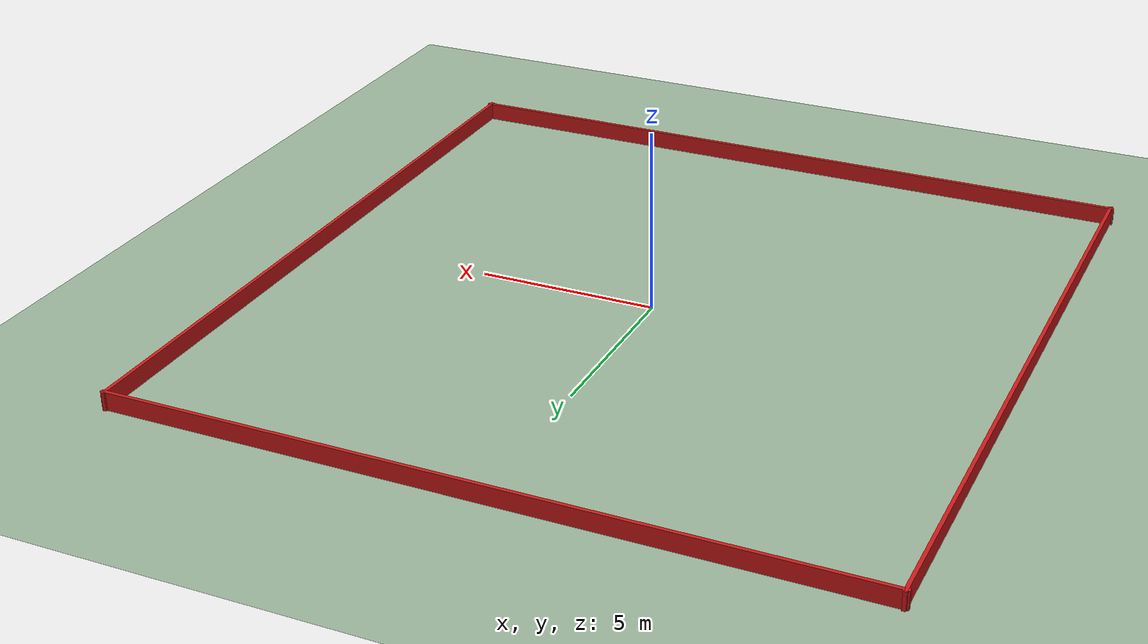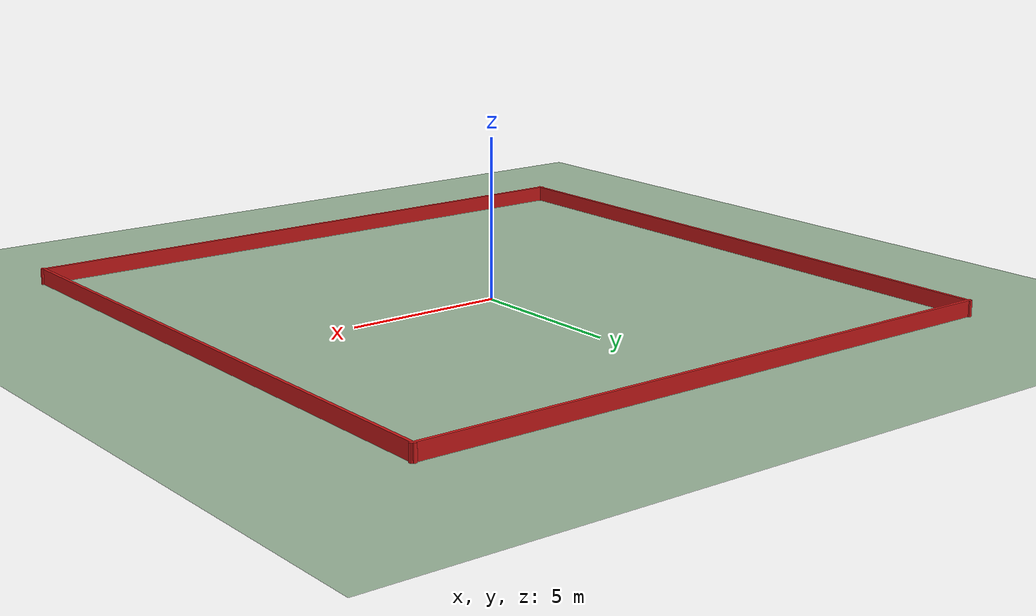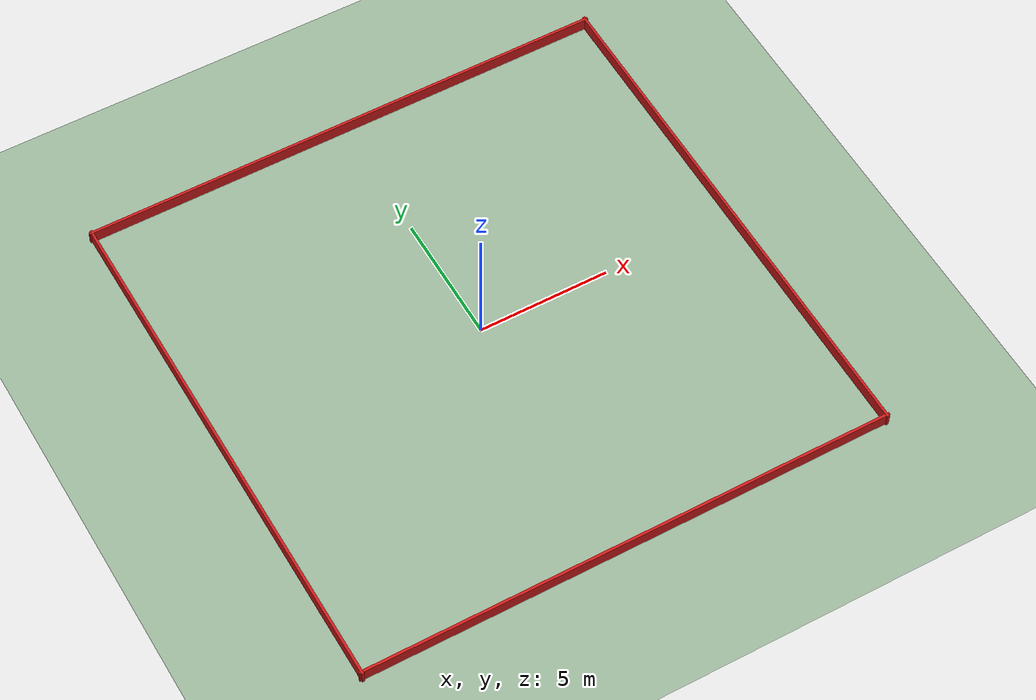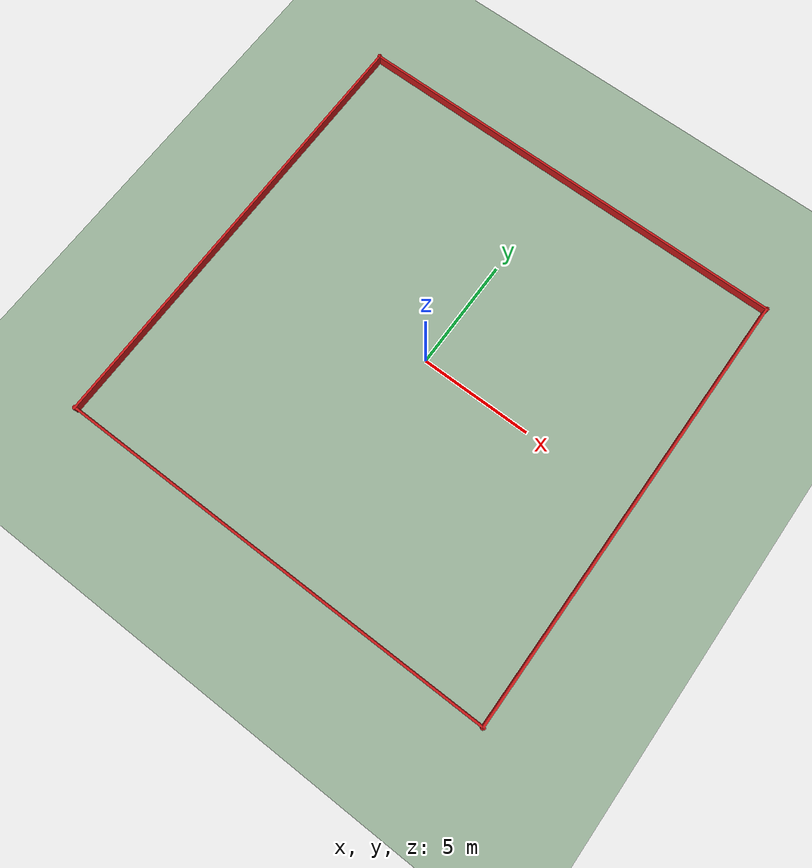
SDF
<?xml version="1.0" ?>
<sdf version="1.9">
  <world name="mapping_world_px4">
    <physics name="1ms" type="ignored">
      <max_step_size>0.004</max_step_size>
      <real_time_factor>1.0</real_time_factor>
      <real_time_update_rate>250</real_time_update_rate>
    </physics>
    <gravity>0 0 -9.8</gravity>
    <magnetic_field>6e-06 2.3e-05 -4.2e-05</magnetic_field>
    <atmosphere type="adiabatic"/>
    <spherical_coordinates>
      <surface_model>EARTH_WGS84</surface_model>
      <world_frame_orientation>ENU</world_frame_orientation>
      <latitude_deg>47.397971057728974</latitude_deg>
      <longitude_deg>8.546163739800146</longitude_deg>
      <elevation>488.0</elevation>
    </spherical_coordinates>

    <plugin filename="gz-sim-physics-system" name="gz::sim::systems::Physics"/>
    <plugin filename="gz-sim-user-commands-system" name="gz::sim::systems::UserCommands"/>
    <plugin filename="gz-sim-scene-broadcaster-system" name="gz::sim::systems::SceneBroadcaster"/>
    <plugin filename="gz-sim-imu-system" name="gz::sim::systems::Imu"/>
    <plugin filename="gz-sim-navsat-system" name="gz::sim::systems::NavSat"/>
    <plugin filename="gz-sim-magnetometer-system" name="gz::sim::systems::Magnetometer"/>
    <plugin filename="gz-sim-air-pressure-system" name="gz::sim::systems::AirPressure"/>
    <plugin filename="gz-sim-air-speed-system" name="gz::sim::systems::AirSpeed"/>
    <plugin filename="gz-sim-sensors-system" name="gz::sim::systems::Sensors">
      <render_engine>ogre2</render_engine>
    </plugin>
    <plugin filename="gz-sim-wind-effects-system" name="gz::sim::systems::WindEffects">
      <horizontal>
        <magnitude>
          <time_for_rise>10</time_for_rise>
          <sin>
            <amplitude_percent>GUST_AMPLITUDE</amplitude_percent>
            <period>60</period>
          </sin>
        </magnitude>
        <direction>
          <time_for_rise>30</time_for_rise>
        </direction>
      </horizontal>
    </plugin>

    <wind>
      <linear_velocity>WIND_VX WIND_VY 0</linear_velocity>
    </wind>

    <light type="directional" name="sun">
      <cast_shadows>true</cast_shadows>
      <pose>0 0 500 0 0 0</pose>
      <diffuse>0.9 0.9 0.9 1</diffuse>
      <specular>0.27 0.27 0.27 1</specular>
      <attenuation>
        <range>2000</range>
        <constant>0.9</constant>
        <linear>0.01</linear>
        <quadratic>0.001</quadratic>
      </attenuation>
      <direction>0.001 0.625 -0.78</direction>
    </light>

    <model name="ground_plane">
      <static>true</static>
      <link name="link">
        <collision name="collision">
          <geometry>
            <plane>
              <normal>0 0 1</normal>
              <size>40 40</size>
            </plane>
          </geometry>
        </collision>
        <visual name="visual">
          <geometry>
            <plane>
              <normal>0 0 1</normal>
              <size>40 40</size>
            </plane>
          </geometry>
          <material>
            <ambient>0.6 0.7 0.6 1</ambient>
            <diffuse>0.6 0.7 0.6 1</diffuse>
            <specular>0.2 0.2 0.2 1</specular>
          </material>
        </visual>
        <enable_wind>ENABLE_WIND</enable_wind>
      </link>
    </model>

    <model name="boundary_north">
      <static>true</static>
      <pose>0 10 0.25 0 0 0</pose>
      <link name="link">
        <visual name="visual">
          <geometry><box><size>20.2 0.1 0.5</size></box></geometry>
          <material><ambient>0.8 0.1 0.1 1</ambient><diffuse>0.8 0.1 0.1 1</diffuse></material>
        </visual>
      </link>
    </model>
    <model name="boundary_south">
      <static>true</static>
      <pose>0 -10 0.25 0 0 0</pose>
      <link name="link">
        <visual name="visual">
          <geometry><box><size>20.2 0.1 0.5</size></box></geometry>
          <material><ambient>0.8 0.1 0.1 1</ambient><diffuse>0.8 0.1 0.1 1</diffuse></material>
        </visual>
      </link>
    </model>
    <model name="boundary_east">
      <static>true</static>
      <pose>10 0 0.25 0 0 0</pose>
      <link name="link">
        <visual name="visual">
          <geometry><box><size>0.1 20.2 0.5</size></box></geometry>
          <material><ambient>0.8 0.1 0.1 1</ambient><diffuse>0.8 0.1 0.1 1</diffuse></material>
        </visual>
      </link>
    </model>
    <model name="boundary_west">
      <static>true</static>
      <pose>-10 0 0.25 0 0 0</pose>
      <link name="link">
        <visual name="visual">
          <geometry><box><size>0.1 20.2 0.5</size></box></geometry>
          <material><ambient>0.8 0.1 0.1 1</ambient><diffuse>0.8 0.1 0.1 1</diffuse></material>
        </visual>
      </link>
    </model>
  </world>
</sdf>
